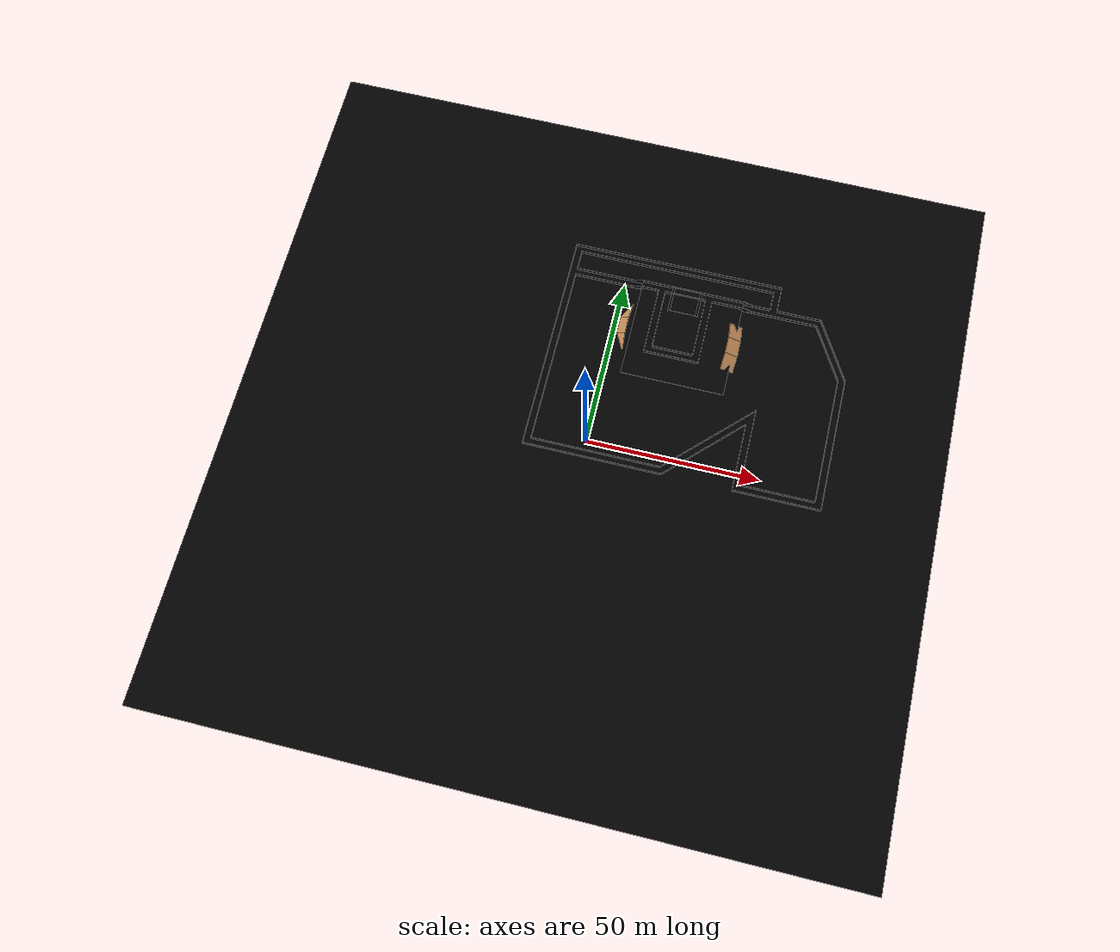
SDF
<sdf version="1.4">
 <world name="default">
  <light name="sun" type="directional">
   <pose>0 0 10 0 -0 0</pose>
   <diffuse>1.0 1.0 1.0 1</diffuse>
   <specular>0.2 0.2 0.2 1</specular>
   <attenuation>
    <range>1000</range>
    <constant>0.9</constant>
    <linear>0.01</linear>
    <quadratic>0.001</quadratic>
   </attenuation>
   <direction>-0.5 -0.5 -1.0</direction>
  </light>
  <include><uri>model://surface</uri></include>
  <include><uri>model://ramp_groundplane</uri><pose>20 37.5 1.1  0 0 0</pose></include>
  <include><uri>model://ramp_groundplane_2</uri><pose>18.34 48.55 1.573  0 0 0</pose></include>
  <include><uri>model://short_ramp</uri><pose>14.205 48.55 1.3  0 -0.6 0</pose></include>
  <include><uri>model://short_ramp</uri><pose>22.475 48.55 1.3  0 0.6 0</pose></include>
  <include><uri>model://3m_ramp</uri><pose>3.64 37.5 0.52  0 -0.4 0</pose></include>
  <include><uri>model://3m_ramp</uri><pose>36.36 37.5 0.52  0 0.4 0</pose></include>
  <include><uri>model://1m_outer_wall</uri></include>
  <include><uri>model://1m_inner_wall</uri></include>
  <physics type="ode">
   <max_step_size>0.001</max_step_size>
   <real_time_factor>1</real_time_factor>
   <real_time_update_rate>1000</real_time_update_rate>
   <gravity>0 0 -9.8</gravity>
  </physics>
  <scene>
   <ambient>1 1 1 1</ambient>
   <background>1 1 1 1</background>
   <shadows>1</shadows>
   <sky><clouds><speed>12</speed></clouds></sky>
  </scene>
  <spherical_coordinates>
   <surface_model>EARTH_WGS84</surface_model>
   <latitude_deg>0</latitude_deg>
   <longitude_deg>0</longitude_deg>
   <elevation>0</elevation>
   <heading_deg>0</heading_deg>
  </spherical_coordinates>
 </world>
</sdf>

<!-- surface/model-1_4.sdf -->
<sdf version="1.4">
  <model name="black_ice_lower_friction">
    <static>true</static>
    <link name="link">
      <collision name="collision">
        <geometry>
          <box>
            <size>200 200 0.1</size>
          </box>
        </geometry>
        <surface>
          <friction>
            <ode>
              <mu>1</mu>
              <mu2>1</mu2>
            </ode>
          </friction>
        </surface>
      </collision>
      <visual name="visual_1">
        <pose>0 0 0 0 0 0</pose>
        <cast_shadows>false</cast_shadows>
        <geometry>
          <box>
            <size>200 200 0.1</size>
          </box>
        </geometry>
        <material>
          <ambient>109 112 113 1</ambient>
          <diffuse>0 0 0 1</diffuse>
          <specular>0 0 0 0</specular>
          <emissive>0 0 0 1</emissive>
        </material>
      </visual>
    </link>
  </model>
</sdf>

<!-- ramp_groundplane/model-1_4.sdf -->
<sdf version="1.4">
  <model name="ramp_groundplane">
    <static>true</static>
    <link name="link">
      <collision name="collision">
        <geometry>
          <box>
            <size>30 30 0.1</size>
          </box>
        </geometry>
        <surface>
          <friction>
            <ode>
              <mu>1</mu>
              <mu2>1</mu2>
            </ode>
          </friction>
        </surface>
      </collision>
      <visual name="visual_1">
        <pose>0 0 0 0 0 0</pose>
        <cast_shadows>false</cast_shadows>
        <geometry>
          <box>
            <size>30 30 0.1</size>
          </box>
        </geometry>
        <material>
          <ambient>137 179 194 1</ambient>
          <diffuse>0 0 0 1</diffuse>
          <specular>0 0 0 0</specular>
          <emissive>0 0 0 1</emissive>
        </material>
      </visual>
    </link>
  </model>
</sdf>

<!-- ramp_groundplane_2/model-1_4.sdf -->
<sdf version="1.4">
  <model name="ramp_groundplane">
    <static>true</static>
    <link name="link">
      <collision name="collision">
        <geometry>
          <box>
            <size>7.5 7.5 0.1</size>
          </box>
        </geometry>
        <surface>
          <friction>
            <ode>
              <mu>1</mu>
              <mu2>1</mu2>
            </ode>
          </friction>
        </surface>
      </collision>
      <visual name="visual_1">
        <pose>0 0 0 0 0 0</pose>
        <cast_shadows>false</cast_shadows>
        <geometry>
          <box>
            <size>7.5 7.5 0.1</size>
          </box>
        </geometry>
        <material>
          <ambient>229 237 239 1</ambient>
          <diffuse>0 0 0 1</diffuse>
          <specular>0 0 0 0</specular>
          <emissive>0 0 0 1</emissive>
        </material>
      </visual>
    </link>
  </model>
</sdf>

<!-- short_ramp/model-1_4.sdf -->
<sdf version="1.4">
  <model name="basic_ramp">
    <static>true</static>
    <link name="link">
      <collision name="collision">
        <geometry>
          <box>
            <size>1 7.5 0.1</size>
          </box>
        </geometry>
        <surface>
          <friction>
            <ode>
              <mu>1</mu>
              <mu2>1</mu2>
              <fdir1>0.000000 0.000000 0.000000</fdir1>
              <slip1>0.000000</slip1>
              <slip2>0.000000</slip2>
            </ode>
          </friction>
          <bounce>
            <restitution_coefficient>0.000000</restitution_coefficient>
            <threshold>100000.000000</threshold>
          </bounce>
          <contact>
            <ode>
              <soft_cfm>0.000000</soft_cfm>
              <soft_erp>0.200000</soft_erp>
              <kp>100000.000000</kp>
              <kd>1.000000</kd>
              <max_vel>100.000000</max_vel>
              <min_depth>0.001000</min_depth>
            </ode>
          </contact>
        </surface>
      </collision>
      <visual name="visual_1">
        <pose>0 0 0  0 0 0</pose>
        <cast_shadows>true</cast_shadows>
        <geometry>
          <box>
            <size>1 7.5 0.1</size>
          </box>
        </geometry>
        <material>
          <ambient>229 237 239 1</ambient>
          <diffuse>0 0 0 1</diffuse>
          <specular>0 0 0 0</specular>
          <emissive>0 0 0 1</emissive>
        </material>
      </visual>
    </link>
  </model>
</sdf>

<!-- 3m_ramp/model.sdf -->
<sdf version="1.4">
  <model name="basic_ramp">
    <static>true</static>
    <link name="link">
      <collision name="collision">
        <geometry>
          <box>
            <size>8 10 0.2</size>
          </box>
        </geometry>
        <surface>
          <friction>
            <ode>
              <mu>10</mu>
              <mu2>10</mu2>
            </ode>
          </friction>
        </surface>
      </collision>
      <visual name="visual_1">
        <pose>-2 4.9 0  -0.2 0 0</pose>
        <cast_shadows>false</cast_shadows>
        <geometry>
          <box>
            <size>4 5 0.2</size>
          </box>
        </geometry>
        <material>
          <script>
            <uri>file://media/materials/scripts/gazebo.material</uri>
            <name>Gazebo/Wood</name>
          </script>
        </material>
      </visual>
      <visual name="visual_2">
        <pose>-2 -4.9 0  0.2 0 0</pose>
        <cast_shadows>false</cast_shadows>
        <geometry>
          <box>
            <size>4 5 0.2</size>
          </box>
        </geometry>
        <material>
          <script>
            <uri>file://media/materials/scripts/gazebo.material</uri>
            <name>Gazebo/Wood</name>
          </script>
        </material>
      </visual>
      <visual name="visual_3">
        <pose>-2 0 0.5  0 0 0</pose>
        <cast_shadows>false</cast_shadows>
        <geometry>
          <box>
            <size>4 5 0.2</size>
          </box>
        </geometry>
        <material>
          <script>
            <uri>file://media/materials/scripts/gazebo.material</uri>
            <name>Gazebo/Wood</name>
          </script>
        </material>
      </visual>
    </link>
  </model>
</sdf>

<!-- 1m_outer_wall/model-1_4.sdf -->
<sdf version="1.4">
  <model name="inner_wall">
    <static>true</static>
    <link name="link">
      <collision name="collision">
        <geometry>
          <box>
            <size>1 0.1 3</size>
          </box>
        </geometry>
        <surface>
          <friction>
            <ode>
              <mu>1</mu>
              <mu2>1</mu2>
              <fdir1>0.000000 0.000000 0.000000</fdir1>
              <slip1>0.000000</slip1>
              <slip2>0.000000</slip2>
            </ode>
          </friction>
          <bounce>
            <restitution_coefficient>0.000000</restitution_coefficient>
            <threshold>100000.000000</threshold>
          </bounce>
          <contact>
            <ode>
              <soft_cfm>0.000000</soft_cfm>
              <soft_erp>0.200000</soft_erp>
              <kp>100000.000000</kp>
              <kd>1.000000</kd>
              <max_vel>100.000000</max_vel>
              <min_depth>0.001000</min_depth>
            </ode>
          </contact>
        </surface>
      </collision>
      <visual name="visual_1">
        <pose>-17 23.8 0  0 0 1.5708</pose>
        <cast_shadows>true</cast_shadows>
        <geometry>
          <box>
            <size>57 0.1 2</size>
          </box>
        </geometry>
        <material>
          <ambient>238 156 48 1</ambient>
          <diffuse>0 0 0 1</diffuse>
          <specular>0 0 0 0</specular>
          <emissive>0 0 0 1</emissive>
        </material>
      </visual>
      <visual name="visual_2">
        <pose>3 -4.7 0  0 0 0</pose>
        <cast_shadows>true</cast_shadows>
        <geometry>
          <box>
            <size>40 0.1 2</size>
          </box>
        </geometry>
        <material>
          <ambient>238 156 48 1</ambient>
          <diffuse>0 0 0 1</diffuse>
          <specular>0 0 0 0</specular>
          <emissive>0 0 0 1</emissive>
        </material>
      </visual>
      <visual name="visual_3">
        <pose>33.0 5.35 0  0 0 0.785398</pose>
        <cast_shadows>true</cast_shadows>
        <geometry>
          <box>
            <size>28.2843 0.1 2</size>
          </box>
        </geometry>
        <material>
          <ambient>238 156 48 1</ambient>
          <diffuse>0 0 0 1</diffuse>
          <specular>0 0 0 0</specular>
          <emissive>0 0 0 1</emissive>
        </material>
      </visual>
      <visual name="visual_4">
        <pose>43 5.325 0  0 0 1.5708</pose>
        <cast_shadows>true</cast_shadows>
        <geometry>
          <box>
            <size>20.05 0.1 2</size>
          </box>
        </geometry>
        <material>
          <ambient>238 156 48 1</ambient>
          <diffuse>0 0 0 1</diffuse>
          <specular>0 0 0 0</specular>
          <emissive>0 0 0 1</emissive>
        </material>
      </visual>
      <visual name="visual_5">
        <pose>55.5 -4.7 0  0 0 0</pose>
        <cast_shadows>true</cast_shadows>
        <geometry>
          <box>
            <size>25 0.1 2</size>
          </box>
        </geometry>
        <material>
          <ambient>238 156 48 1</ambient>
          <diffuse>0 0 0 1</diffuse>
          <specular>0 0 0 0</specular>
          <emissive>0 0 0 1</emissive>
        </material>
      </visual>
      <visual name="visual_6">
        <pose>68 15.15 0  0 0 1.5708</pose>
        <cast_shadows>true</cast_shadows>
        <geometry>
          <box>
            <size>39.7 0.1 2</size>
          </box>
        </geometry>
        <material>
          <ambient>238 156 48 1</ambient>
          <diffuse>0 0 0 1</diffuse>
          <specular>0 0 0 0</specular>
          <emissive>0 0 0 1</emissive>
        </material>
      </visual>
      <visual name="visual_7">
        <pose>63.0   43.65 0  0 0 2.094399</pose>
        <cast_shadows>true</cast_shadows>
        <geometry>
          <box>
            <size>19.9822 0.1 2</size>
          </box>
        </geometry>
        <material>
          <ambient>238 156 48 1</ambient>
          <diffuse>0 0 0 1</diffuse>
          <specular>0 0 0 0</specular>
          <emissive>0 0 0 1</emissive>
        </material>
      </visual>
      <visual name="visual_8">
        <pose>14 52.3 0  0 0 0</pose>
        <cast_shadows>true</cast_shadows>
        <geometry>
          <box>
            <size>58 0.1 2</size>
          </box>
        </geometry>
        <material>
          <ambient>238 156 48 1</ambient>
          <diffuse>0 0 0 1</diffuse>
          <specular>0 0 0 0</specular>
          <emissive>0 0 0 1</emissive>
        </material>
      </visual>
      <visual name="visual_13">
        <pose>20 52.3 1.6  0 0 0</pose>
        <cast_shadows>true</cast_shadows>
        <geometry>
          <box>
            <size>30.5 0.1 1</size>
          </box>
        </geometry>
        <material>
          <ambient>238 156 48 1</ambient>
          <diffuse>0 0 0 1</diffuse>
          <specular>0 0 0 0</specular>
          <emissive>0 0 0 1</emissive>
        </material>
      </visual>
      <visual name="visual_15">
        <pose>36.36 52.3 0.52  0 0.4 0</pose>
        <cast_shadows>true</cast_shadows>
        <geometry>
          <box>
            <size>3.25 0.1 2</size>
          </box>
        </geometry>
        <material>
          <ambient>238 156 48 1</ambient>
          <diffuse>0 0 0 1</diffuse>
          <specular>0 0 0 0</specular>
          <emissive>0 0 0 1</emissive>
        </material>
      </visual>
      <visual name="visual_16">
        <pose>3.64 52.3 0.52  0 -0.4 0</pose>
        <cast_shadows>true</cast_shadows>
        <geometry>
          <box>
            <size>3.25 0.1 2</size>
          </box>
        </geometry>
        <material>
          <ambient>238 156 48 1</ambient>
          <diffuse>0 0 0 1</diffuse>
          <specular>0 0 0 0</specular>
          <emissive>0 0 0 1</emissive>
        </material>
      </visual><visual name="visual_17">
        <pose>51.5 52.3 0  0 0 0</pose>
        <cast_shadows>true</cast_shadows>
        <geometry>
          <box>
            <size>13 0.1 2</size>
          </box>
        </geometry>
        <material>
          <ambient>238 156 48 1</ambient>
          <diffuse>0 0 0 1</diffuse>
          <specular>0 0 0 0</specular>
          <emissive>0 0 0 1</emissive>
        </material>
      </visual>
      <visual name="visual_18">
        <pose>14 58 0  0 0 0</pose>
        <cast_shadows>true</cast_shadows>
        <geometry>
          <box>
            <size>58 0.1 2</size>
          </box>
        </geometry>
        <material>
          <ambient>238 156 48 1</ambient>
          <diffuse>0 0 0 1</diffuse>
          <specular>0 0 0 0</specular>
          <emissive>0 0 0 1</emissive>
        </material>
      </visual>
	<visual name="visual_19">
        <pose>43 55.15 0  0 0 1.5708</pose>
        <cast_shadows>true</cast_shadows>
        <geometry>
          <box>
            <size>5.7 0.1 2</size>
          </box>
        </geometry>
        <material>
          <ambient>238 156 48 1</ambient>
          <diffuse>0 0 0 1</diffuse>
          <specular>0 0 0 0</specular>
          <emissive>0 0 0 1</emissive>
        </material>
      </visual>
	<visual name="visual_20">
        <pose>-15 55.15 0  0 0 1.5708</pose>
        <cast_shadows>true</cast_shadows>
        <geometry>
          <box>
            <size>5.7 0.1 2</size>
          </box>
        </geometry>
        <material>
          <ambient>238 156 48 1</ambient>
          <diffuse>0 0 0 1</diffuse>
          <specular>0 0 0 0</specular>
          <emissive>0 0 0 1</emissive>
        </material>
      </visual>

      <visual name="visual_9">
        <pose>12 41.3 1.6  0 0 1.5708</pose>
        <cast_shadows>true</cast_shadows>
        <geometry>
          <box>
            <size>18 0.1 1</size>
          </box>
        </geometry>
        <material>
          <ambient>238 156 48 1</ambient>
          <diffuse>0 0 0 1</diffuse>
          <specular>0 0 0 0</specular>
          <emissive>0 0 0 1</emissive>
        </material>
      </visual>
      <visual name="visual_10">
        <pose>18 32.3 1.6  0 0 0</pose>
        <cast_shadows>true</cast_shadows>
        <geometry>
          <box>
            <size>12 0.1 1</size>
          </box>
        </geometry>
        <material>
          <ambient>238 156 48 1</ambient>
          <diffuse>0 0 0 1</diffuse>
          <specular>0 0 0 0</specular>
          <emissive>0 0 0 1</emissive>
        </material>
      </visual>
      <visual name="visual_11">
        <pose>24 41.3 1.6  0 0 1.5708</pose>
        <cast_shadows>true</cast_shadows>
        <geometry>
          <box>
            <size>18 0.1 1</size>
          </box>
        </geometry>
        <material>
          <ambient>238 156 48 1</ambient>
          <diffuse>0 0 0 1</diffuse>
          <specular>0 0 0 0</specular>
          <emissive>0 0 0 1</emissive>
        </material>
      </visual>
      <visual name="visual_12">
        <pose>18 50.3 1.6  0 0 0</pose>
        <cast_shadows>true</cast_shadows>
        <geometry>
          <box>
            <size>12 0.1 1</size>
          </box>
        </geometry>
        <material>
          <ambient>238 156 48 1</ambient>
          <diffuse>0 0 0 1</diffuse>
          <specular>0 0 0 0</specular>
          <emissive>0 0 0 1</emissive>
        </material>
      </visual>

    </link>
  </model>
</sdf>

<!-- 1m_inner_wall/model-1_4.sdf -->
<sdf version="1.4">
  <model name="outer_wall">
    <static>true</static>
    <link name="link">
      <collision name="collision">
        <geometry>
          <box>
            <size>1 0.1 3</size>
          </box>
        </geometry>
        <surface>
          <friction>
            <ode>
              <mu>1</mu>
              <mu2>1</mu2>
              <fdir1>0.000000 0.000000 0.000000</fdir1>
              <slip1>0.000000</slip1>
              <slip2>0.000000</slip2>
            </ode>
          </friction>
          <bounce>
            <restitution_coefficient>0.000000</restitution_coefficient>
            <threshold>100000.000000</threshold>
          </bounce>
          <contact>
            <ode>
              <soft_cfm>0.000000</soft_cfm>
              <soft_erp>0.200000</soft_erp>
              <kp>100000.000000</kp>
              <kd>1.000000</kd>
              <max_vel>100.000000</max_vel>
              <min_depth>0.001000</min_depth>
            </ode>
          </contact>
        </surface>
      </collision>
      <visual name="visual_1">
        <pose>-15 23.8 0  0 0 1.5708</pose>
        <cast_shadows>true</cast_shadows>
        <geometry>
          <box>
            <size>53 0.1 2</size>
          </box>
        </geometry>
        <material>
          <ambient>238 156 48 1</ambient>
          <diffuse>0 0 0 1</diffuse>
          <specular>0 0 0 0</specular>
          <emissive>0 0 0 1</emissive>
        </material>
      </visual>
      <visual name="visual_2">
        <pose>3.5 -2.7 0  0 0 0</pose>
        <cast_shadows>true</cast_shadows>
        <geometry>
          <box>
            <size>37 0.1 2</size>
          </box>
        </geometry>
        <material>
          <ambient>238 156 48 1</ambient>
          <diffuse>0 0 0 1</diffuse>
          <specular>0 0 0 0</specular>
          <emissive>0 0 0 1</emissive>
        </material>
      </visual>
      <visual name="visual_3">
        <pose>33.5    8.65 0  0 0 0.785398</pose>
        <cast_shadows>true</cast_shadows>
        <geometry>
          <box>
            <size>32.3155 0.1 2</size>
          </box>
        </geometry>
        <material>
          <ambient>238 156 48 1</ambient>
          <diffuse>0 0 0 1</diffuse>
          <specular>0 0 0 0</specular>
          <emissive>0 0 0 1</emissive>
        </material>
      </visual>
      <visual name="visual_4">
        <pose>45 8.65 0  0 0 1.5708</pose>
        <cast_shadows>true</cast_shadows>
        <geometry>
          <box>
            <size>22.7 0.1 2</size>
          </box>
        </geometry>
        <material>
          <ambient>238 156 48 1</ambient>
          <diffuse>0 0 0 1</diffuse>
          <specular>0 0 0 0</specular>
          <emissive>0 0 0 1</emissive>
        </material>
      </visual>
      <visual name="visual_5">
        <pose>55.5 -2.7 0  0 0 0</pose>
        <cast_shadows>true</cast_shadows>
        <geometry>
          <box>
            <size>21 0.1 2</size>
          </box>
        </geometry>
        <material>
          <ambient>238 156 48 1</ambient>
          <diffuse>0 0 0 1</diffuse>
          <specular>0 0 0 0</specular>
          <emissive>0 0 0 1</emissive>
        </material>
      </visual>
      <visual name="visual_6">
        <pose>66 15.9 0  0 0 1.5708</pose>
        <cast_shadows>true</cast_shadows>
        <geometry>
          <box>
            <size>37.2 0.1 2</size>
          </box>
        </geometry>
        <material>
          <ambient>238 156 48 1</ambient>
          <diffuse>0 0 0 1</diffuse>
          <specular>0 0 0 0</specular>
          <emissive>0 0 0 1</emissive>
        </material>
      </visual>
      <visual name="visual_7">
        <pose>61.5 42.4 0  0 0 2.094399</pose>
        <cast_shadows>true</cast_shadows>
        <geometry>
          <box>
            <size>18.1835 0.1 2</size>
          </box>
        </geometry>
        <material>
          <ambient>238 156 48 1</ambient>
          <diffuse>0 0 0 1</diffuse>
          <specular>0 0 0 0</specular>
          <emissive>0 0 0 1</emissive>
        </material>
      </visual>
      <visual name="visual_8">
        <pose>21 50.3 0  0 0 0</pose>
        <cast_shadows>true</cast_shadows>
        <geometry>
          <box>
            <size>72 0.1 2</size>
          </box>
        </geometry>
        <material>
          <ambient>238 156 48 1</ambient>
          <diffuse>0 0 0 1</diffuse>
          <specular>0 0 0 0</specular>
          <emissive>0 0 0 1</emissive>
        </material>
      </visual>
      <visual name="visual_12">
        <pose>7.375 50.3 1.6  0 0 0</pose>
        <cast_shadows>true</cast_shadows>
        <geometry>
          <box>
            <size>5.25 0.1 1</size>
          </box>
        </geometry>
        <material>
          <ambient>238 156 48 1</ambient>
          <diffuse>0 0 0 1</diffuse>
          <specular>0 0 0 0</specular>
          <emissive>0 0 0 1</emissive>
        </material>
      </visual>
      <visual name="visual_13">
        <pose>30.625 50.3 1.6  0 0 0</pose>
        <cast_shadows>true</cast_shadows>
        <geometry>
          <box>
            <size>9 0.1 1</size>
          </box>
        </geometry>
        <material>
          <ambient>238 156 48 1</ambient>
          <diffuse>0 0 0 1</diffuse>
          <specular>0 0 0 0</specular>
          <emissive>0 0 0 1</emissive>
        </material>
      </visual>
      <visual name="visual_14">
        <pose>36.36 50.3 0.52  0 0.4 0</pose>
        <cast_shadows>true</cast_shadows>
        <geometry>
          <box>
            <size>3.25 0.1 2</size>
          </box>
        </geometry>
        <material>
          <ambient>238 156 48 1</ambient>
          <diffuse>0 0 0 1</diffuse>
          <specular>0 0 0 0</specular>
          <emissive>0 0 0 1</emissive>
        </material>
      </visual>
      <visual name="visual_15">
        <pose>3.64 50.3 0.52  0 -0.4 0</pose>
        <cast_shadows>true</cast_shadows>
        <geometry>
          <box>
            <size>3.25 0.1 2</size>
          </box>
        </geometry>
        <material>
          <ambient>238 156 48 1</ambient>
          <diffuse>0 0 0 1</diffuse>
          <specular>0 0 0 0</specular>
          <emissive>0 0 0 1</emissive>
        </material>
      </visual>
	      <visual name="visual_16">
        <pose>14 60 0  0 0 0</pose>
        <cast_shadows>true</cast_shadows>
        <geometry>
          <box>
            <size>62 0.1 2</size>
          </box>
        </geometry>
        <material>
          <ambient>238 156 48 1</ambient>
          <diffuse>0 0 0 1</diffuse>
          <specular>0 0 0 0</specular>
          <emissive>0 0 0 1</emissive>
        </material>
      </visual>
	<visual name="visual_17">
        <pose>45 56.15 0  0 0 1.5708</pose>
        <cast_shadows>true</cast_shadows>
        <geometry>
          <box>
            <size>7.7 0.1 2</size>
          </box>
        </geometry>
        <material>
          <ambient>238 156 48 1</ambient>
          <diffuse>0 0 0 1</diffuse>
          <specular>0 0 0 0</specular>
          <emissive>0 0 0 1</emissive>
        </material>
      </visual>
	<visual name="visual_18">
        <pose>-17 56.15 0  0 0 1.5708</pose>
        <cast_shadows>true</cast_shadows>
        <geometry>
          <box>
            <size>7.7 0.1 2</size>
          </box>
        </geometry>
        <material>
          <ambient>238 156 48 1</ambient>
          <diffuse>0 0 0 1</diffuse>
          <specular>0 0 0 0</specular>
          <emissive>0 0 0 1</emissive>
        </material>
      </visual>

       <visual name="visual_9">
        <pose>10 40.3 1.6  0 0 1.5708</pose>
        <cast_shadows>true</cast_shadows>
        <geometry>
          <box>
            <size>20 0.1 1</size>
          </box>
        </geometry>
        <material>
          <ambient>238 156 48 1</ambient>
          <diffuse>0 0 0 1</diffuse>
          <specular>0 0 0 0</specular>
          <emissive>0 0 0 1</emissive>
        </material>
      </visual>
      <visual name="visual_10">
        <pose>18 30.3 1.6  0 0 0</pose>
        <cast_shadows>true</cast_shadows>
        <geometry>
          <box>
            <size>16 0.1 1</size>
          </box>
        </geometry>
        <material>
          <ambient>238 156 48 1</ambient>
          <diffuse>0 0 0 1</diffuse>
          <specular>0 0 0 0</specular>
          <emissive>0 0 0 1</emissive>
        </material>
      </visual>
      <visual name="visual_11">
        <pose>26.0 40.3 1.6  0 0 1.5708</pose>
        <cast_shadows>true</cast_shadows>
        <geometry>
          <box>
            <size>20 0.1 1</size>
          </box>
        </geometry>
        <material>
          <ambient>238 156 48 1</ambient>
          <diffuse>0 0 0 1</diffuse>
          <specular>0 0 0 0</specular>
          <emissive>0 0 0 1</emissive>
        </material>
      </visual>

    </link>
  </model>
</sdf>
